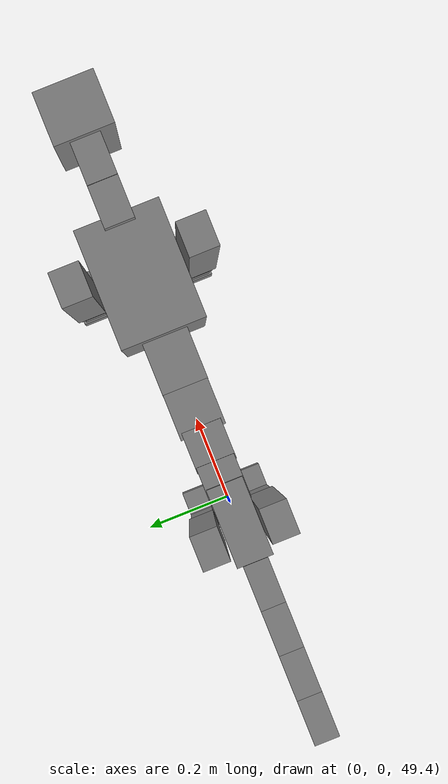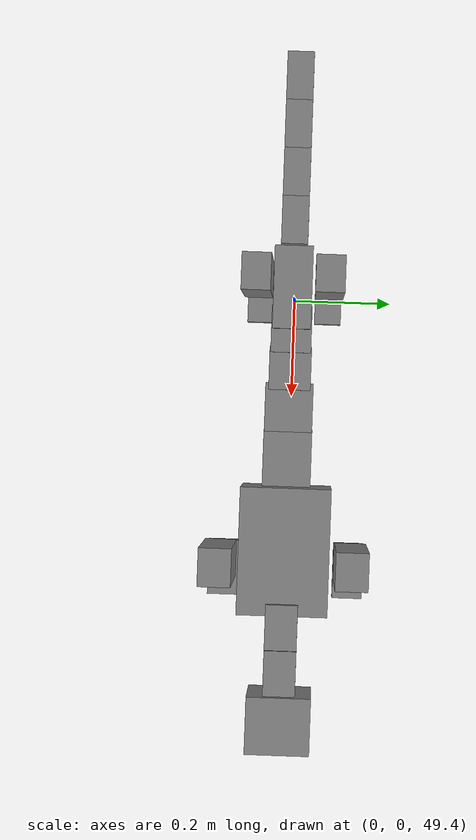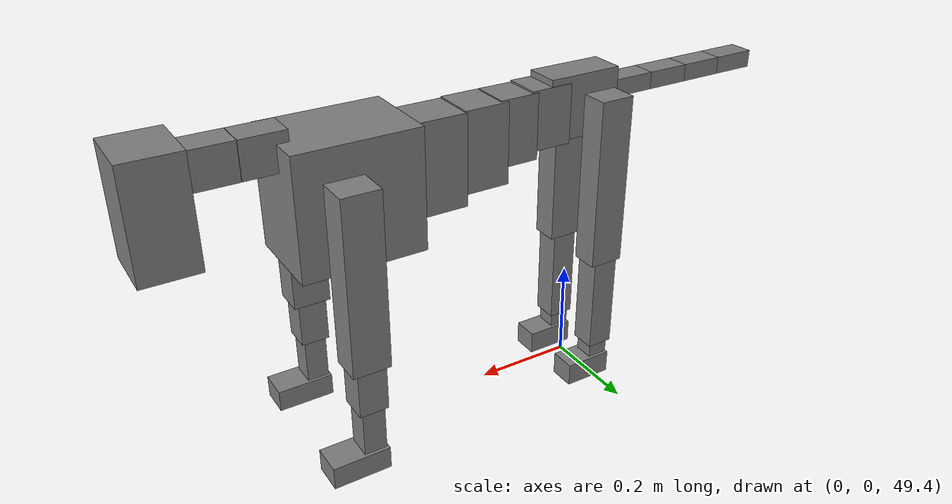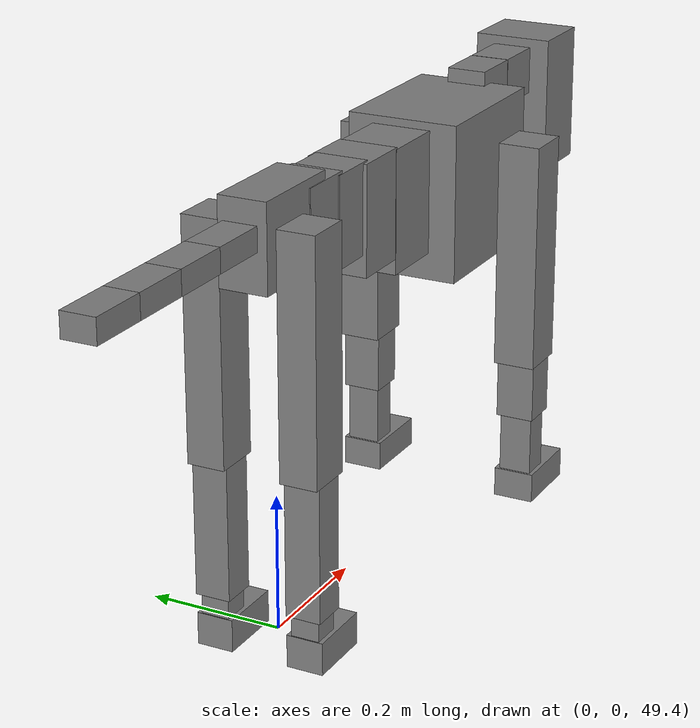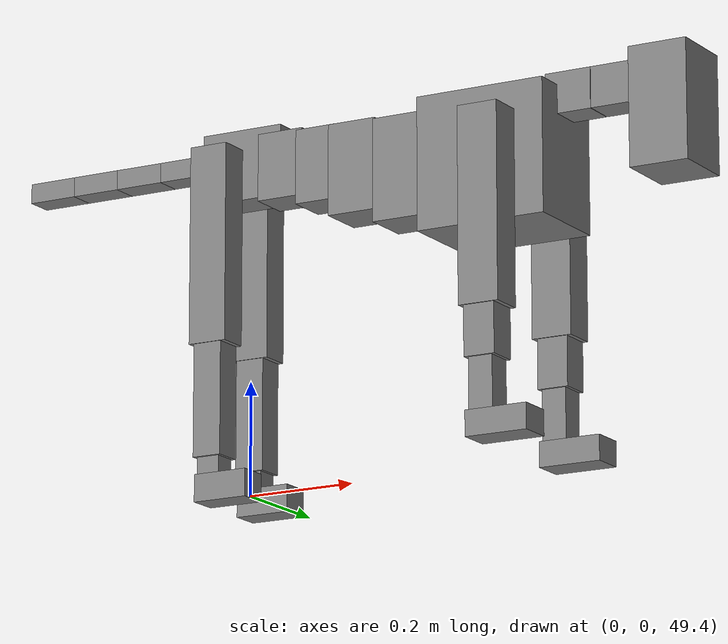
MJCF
<mujoco model="dog">

    <default>
        <joint armature="0.02" stiffness="1" damping="0.2" limited="true"/>
        <geom condim="3" friction="1 0.05 0.05" margin="0.01"/>
        <motor ctrllimited="true" ctrlrange="-1.0 1.0" forcelimited="true" gear="50"/>
    </default>

    <compiler inertiafromgeom="true" angle="radian"/>

    <option timestep="0.016" iterations="50" tolerance="1e-10" solver="Newton" jacobian="dense" cone="pyramidal"/>

    <size nconmax="20000" njmax="60000" nstack="5000000"/>
    <visual>
        <map force="0.1" zfar="30"/>
        <rgba haze="0.15 0.25 0.35 1"/>
        <quality shadowsize="2048"/>
        <global offwidth="800" offheight="800"/>
    </visual>

    <asset>
        <texture type="skybox" builtin="gradient" rgb1="0.3 0.5 0.7" rgb2="0 0 0" width="512" height="512"/>
        <texture name="texplane" type="2d" builtin="checker" rgb1=".2 .3 .4" rgb2=".1 0.15 0.2" width="512" height="512"
                 mark="cross" markrgb=".8 .8 .8"/>
        <texture name="texgeom" type="cube" builtin="flat" mark="cross" width="127" height="1278" rgb1="0.8 0.6 0.4"
                 rgb2="0.8 0.6 0.4" markrgb="1 1 1" random="0.01"/>

        <material name="matplane" reflectance="0.3" texture="texplane" texrepeat="1 1" texuniform="true"/>
        <material name="matgeom" texture="texgeom" texuniform="true" rgba="0.8 0.6 .4 1"/>
    </asset>

    <worldbody>
        <geom name="floor" pos="0 0 0" size="0 0 .25" type="plane" material="matplane" condim="3"/>

        <light directional="false" diffuse=".2 .2 .2" specular="0 0 0" pos="0 0 5" dir="0 0 -1" castshadow="false"/>
        <light mode="targetbodycom" target="torso" directional="false" diffuse=".8 .8 .8" specular="0.3 0.3 0.3"
               pos="0 0 4.0" dir="0 0 -1"/>

        <body name="root" pos="0 0 50">
            <freejoint name="root_1"/>
            <geom type="box" pos="0 0 -0.02" size="0.0774  0.0358  0.063" density="2030"/>

            <body name="spine1" pos="0.054 0 0">
                <joint name="spine1_y" axis="0 1 0" range="0 0.7" limited="true"/>
                <geom type="box" pos="0.02375 0 -0.03" size="0.04375  0.0375  0.05985" density="2030"/>

                <body name="spine2" pos="0.0612 0 0">
                    <joint name="spine2_y" axis="0 1 0" range="-0.15 0.15" limited="true"/>
                    <geom type="box" pos="0.03555  0  -0.04" size="0.04055  0.039  0.06615" density="2030"/>

                    <body name="spine3" pos="0.0730 0 0">
                        <joint name="spine3_y" axis="0 1 0" range="-0.15 0.15" limited="true"/>
                        <geom type="box" pos="0.03555  0  -0.057" size="0.04555  0.0445  0.081" density="2030"/>

                        <body name="spine4" pos="0.0780 0 0">
                            <joint name="spine4_y" axis="0 1 0" range="-0.15 0.15" limited="true"/>
                            <geom type="box" pos="0.05265  0  -0.07" size="0.05265  0.045  0.09135" density="2030"/>

                            <body name="torso" pos="0.1082 0 0">
                                <joint name="torso_y" axis="0 1 0" range="-0.15 0.15" limited="true"/>
                                <geom type="box" pos="0.11925  0  -0.085" size="0.11925  0.085  0.11745"
                                      density="2030"/>

                                <body name="neck1" pos="0.2160  0   0.0180">
                                    <joint name="neck1_y" axis="0 1 0" range="-1.2  -1" limited="true"/>
                                    <geom type="box" pos="0.0423  0  0" size="0.0423  0.03  0.036" density="2325"/>

                                    <body name="neck2" pos="0.0853  0  0">
                                        <joint name="neck2_y" axis="0 1 0" range="0.1  0" limited="true"/>
                                        <geom type="box" pos="0.0423  0  0" size="0.0423  0.03  0.036" density="2325"/>

                                        <body name="head" pos="0.0853  0  0">
                                            <joint name="head_y" axis="0 1 0" range="-0.3  -0.2" limited="true"/>
                                            <geom type="box" pos="0.0531  0  -0.055" size="0.0531  0.06  0.1044"
                                                  density="4030"/>

                                        </body>
                                    </body>
                                </body>

                                <body name="front_shoulder" pos="0.156  0   -0.0480">
                                    <joint name="front_shoulder_y" axis="0 1 0" range="-1 1.5" limited="true"/>
                                    <geom type="box" pos="0 0.13 -0.1448" size="0.0368  0.0315  0.1715" density="1158"/>
                                    <geom type="box" pos="0 -0.13 -0.1448" size="0.0368  0.0315  0.1715"
                                          density="1158"/>

                                    <body name="front_elbow" pos="0  0  -0.2896">
                                        <joint name="front_elbow_y" axis="0 1 0" range="-2 0" limited="true"/>
                                        <geom type="box" pos="0 0.13 -0.0573" size="0.0282  0.0289  0.0573"
                                              density="1081"/>
                                        <geom type="box" pos="0 -0.13 -0.0573" size="0.0282  0.0289  0.0573"
                                              density="1081"/>

                                        <body name="front_wrist" pos="0  0  -0.1146">
                                            <joint name="front_wrist_y" axis="0 1 0" range="-0.2 0" limited="true"/>
                                            <geom type="box" pos="0 0.13 -0.0526" size="0.0221  0.0246  0.0658"
                                                  density="1664"/>
                                            <geom type="box" pos="0 -0.13 -0.0526" size="0.0221  0.0246  0.0658"
                                                  density="1664"/>

                                            <body name="front_finger_end" pos="0  0  -0.1052">
                                                <joint name="front_finger_y" axis="0 1 0" range="-0.4 1"
                                                       limited="true"/>
                                                <geom type="box" pos="0.0309  0.13  -0.0074"
                                                      size="0.0567  0.0309  0.0224" density="1515"/>
                                                <geom type="box" pos="0.0309  -0.13  -0.0074"
                                                      size="0.0567  0.0309  0.0224" density="1515"/>

                                            </body>

                                        </body>
                                    </body>
                                </body>

                            </body>
                        </body>
                    </body>
                </body>
            </body>

            <body name="back_hip" pos="-0.03 0 -0.018">
                <joint name="back_hip_y" axis="0 1 0" range="-1.5 0.3" limited="true"/>
                <geom type="box" pos="0 0.07 -0.1525" size="0.0355  0.0279  0.1753" density="1154"/>
                <geom type="box" pos="0 -0.07 -0.1525" size="0.0355  0.0279  0.1753" density="1154"/>

                <body name="back_knee" pos="0  0  -0.3049">
                    <joint name="back_knee_y" axis="0 1 0" range="0 2.8" limited="true"/>
                    <geom type="box" pos="0 0.07 -0.1029" size="0.0265  0.0261  0.1184" density="1227"/>
                    <geom type="box" pos="0 -0.07 -0.1029" size="0.0265  0.0261  0.1184" density="1227"/>

                    <body name="back_ankle" pos="0  0  -0.2058">
                        <joint name="back_ankle_y" axis="0 1 0" range="-2.2 0" limited="true"/>
                        <geom type="box" pos="0 0.07 -0.0306" size="0.0209  0.0209  0.0418" density="1284"/>
                        <geom type="box" pos="0 -0.07 -0.0306" size="0.0209  0.0209  0.0418" density="1284"/>

                        <body name="back_toe_end" pos="0  0  -0.0611">
                            <joint name="back_toe_y" axis="0 1 0" range="-0.4 1" limited="true"/>
                            <geom type="box" pos="0.0273  0.07  -0.0090" size="0.0500  0.0273  0.0240" density="1515"/>
                            <geom type="box" pos="0.0273  -0.07  -0.0090" size="0.0500  0.0273  0.0240" density="1515"/>

                        </body>
                    </body>
                </body>
            </body>

            <body name="tail1" pos="-0.074 0 -0.006">
                <joint name="tail1_y" axis="0 1 0" range="-0.2 0.2" limited="true"/>
                <geom type="box" pos="-0.0536  0  0" size="0.045  0.025  0.0175" density="1587"/>

                <body name="tail2" pos="-0.09 0 0">
                    <joint name="tail2_y" axis="0 1 0" range="-0.2 0.2" limited="true"/>
                    <geom type="box" pos="-0.0536  0  0" size="0.045  0.025  0.0175" density="1587"/>

                    <body name="tail3" pos="-0.09 0 0">
                        <joint name="tail3_y" axis="0 1 0" range="-0.2 0.2" limited="true"/>
                        <geom type="box" pos="-0.0536  0  0" size="0.045  0.025  0.0175" density="1587"/>

                        <body name="tail4" pos="-0.09 0 0">
                            <joint name="tail4_y" axis="0 1 0" range="-0.2 0.2" limited="true"/>
                            <geom type="box" pos="-0.0536  0  0" size="0.045  0.025  0.0175" density="1587"/>

                        </body>
                    </body>
                </body>
            </body>
        </body>
    </worldbody>

    <actuator>
        <motor joint="spine1_y" forcerange="-150 150     "/>
        <motor joint="spine2_y" forcerange="-150 150     "/>
        <motor joint="spine3_y" forcerange="-150 150     "/>
        <motor joint="spine4_y" forcerange="-150 150     "/>
        <motor joint="torso_y" forcerange="-150 150     "/>
        <motor joint="neck1_y" forcerange="-100 100       "/>
        <motor joint="neck2_y" forcerange="-100 100       "/>
        <motor joint="head_y" forcerange="-150 150       "/>
        <motor joint="front_shoulder_y" forcerange="-150.47 159.46"/>
        <motor joint="front_elbow_y" forcerange="-185.12 124.85"/>
        <motor joint="front_wrist_y" forcerange="-120.13 76.51"/>
        <motor joint="front_finger_y" forcerange="-29.91 94.97"/>
        <motor joint="back_hip_y" forcerange="-371.73 200.02"/>
        <motor joint="back_knee_y" forcerange="-264.99 314.30"/>
        <motor joint="back_angle_y" forcerange="-82.74 152.02"/>
        <motor joint="back_toe_y" forcerange="-106.26 32.10"/>
        <motor joint="tail1_y" forcerange="-50 50     "/>
        <motor joint="tail2_y" forcerange="-50 50     "/>
        <motor joint="tail3_y" forcerange="-50 50     "/>
        <motor joint="tail4_y" forcerange="-50 50     "/>
    </actuator>
</mujoco>
